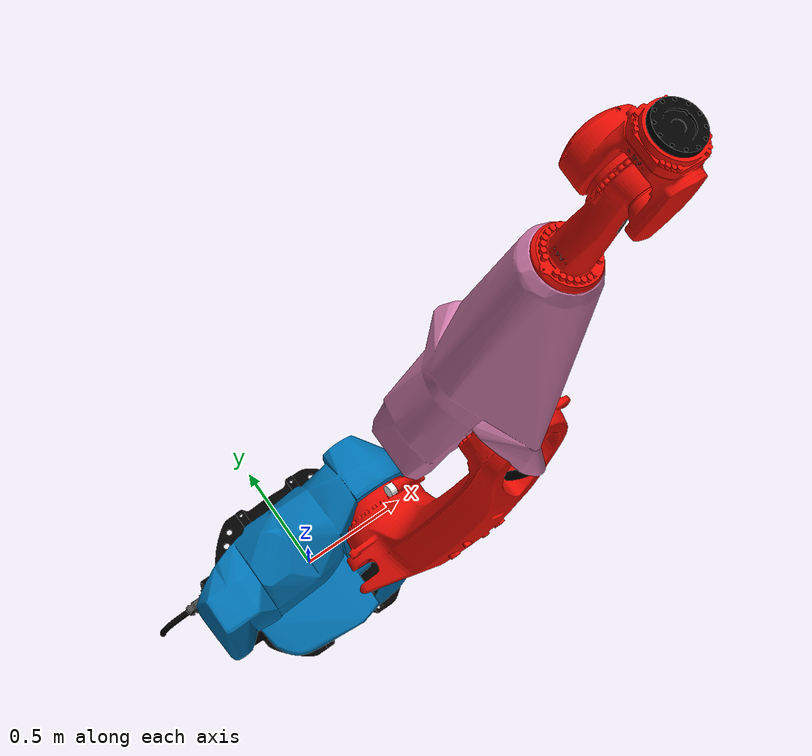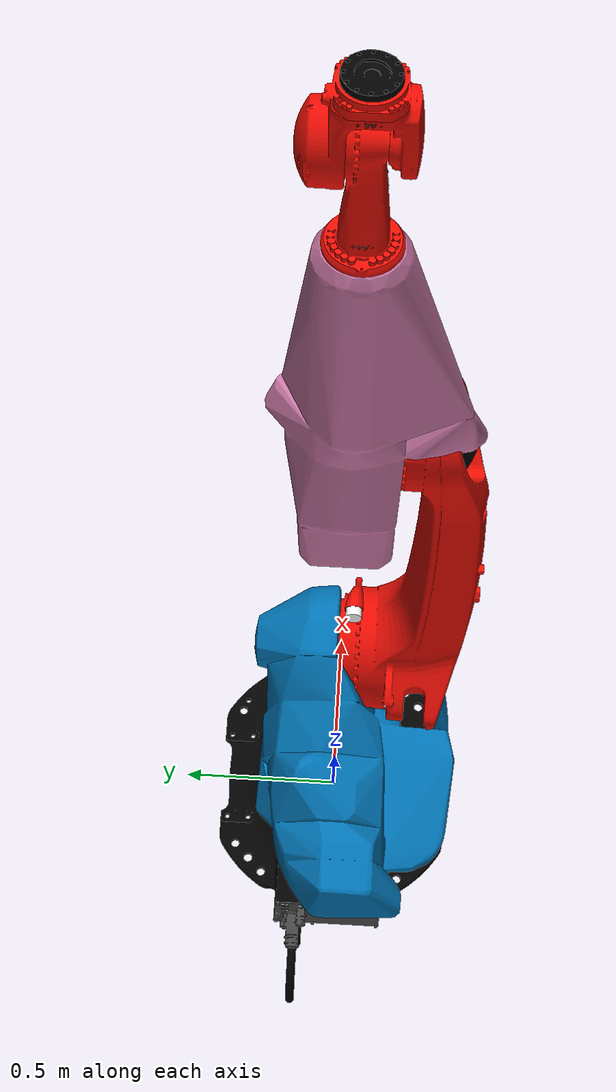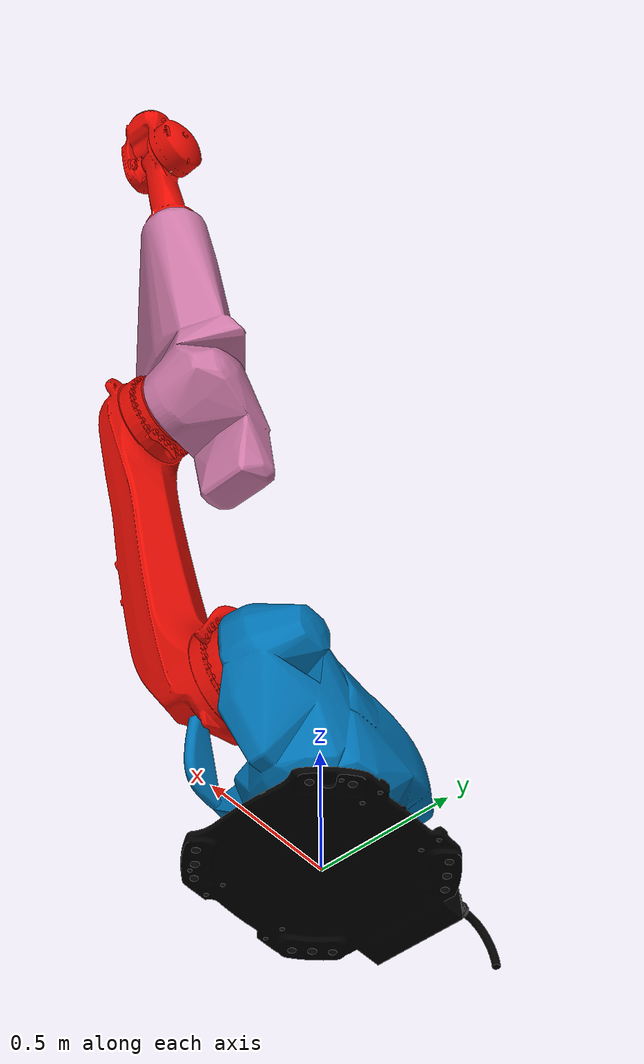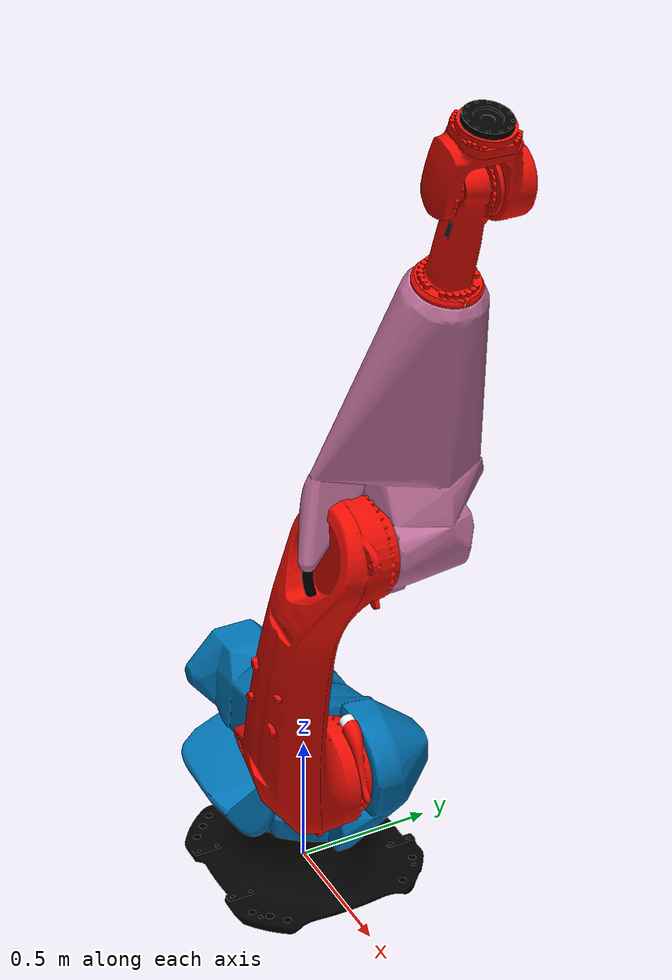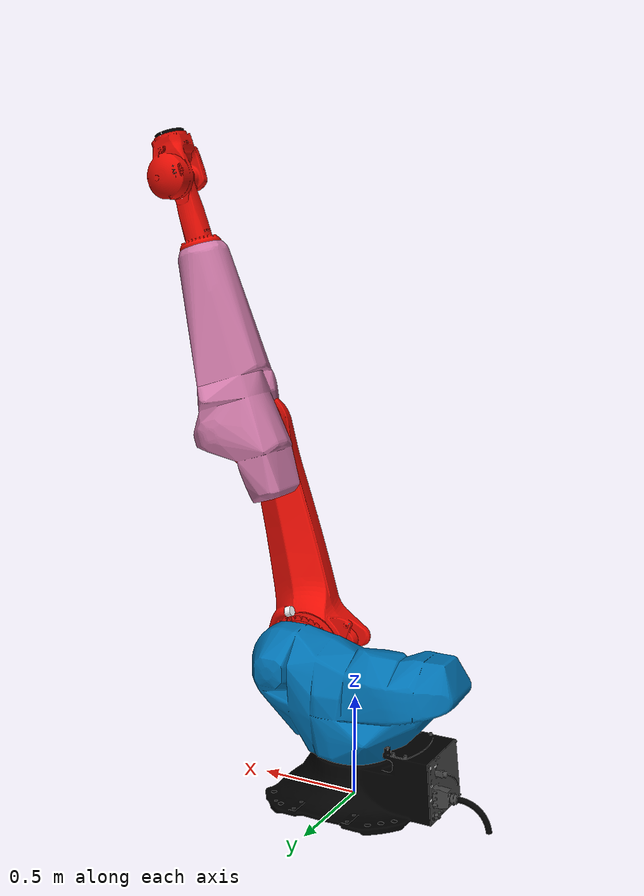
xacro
<?xml version="1.0" encoding="UTF-8"?>
<robot xmlns:xacro="http://www.ros.org/wiki/xacro" name="kr120_r2700_2">
  <!-- Import urdf files  -->
  <xacro:include filename="$(find kuka_quantec_support)/urdf/kr120_r2700_2_macro.xacro"/>
  <xacro:include filename="$(find kuka_quantec_support)/urdf/kr_quantec_ros2_control_macro.xacro"/>
  <!-- Basic arguments  -->
  <xacro:arg name="prefix" default=""/>
  <xacro:arg name="x" default="0"/>
  <xacro:arg name="y" default="0"/>
  <xacro:arg name="z" default="0"/>
  <xacro:arg name="roll" default="0"/>
  <xacro:arg name="pitch" default="0"/>
  <xacro:arg name="yaw" default="0"/>
  <!-- kroshu-specific arguments -->
  <xacro:arg name="driver_version" default="rsi_only"/>
  <xacro:arg name="mode" default="hardware"/>
  <xacro:arg name="gpio_config" default=""/>
  <xacro:arg name="roundtrip_time" default="0"/>
  <xacro:arg name="client_ip" default="0.0.0.0"/>
  <xacro:arg name="client_port" default="59152"/>
  <xacro:arg name="mxa_client_port" default="1337"/>
  <xacro:arg name="controller_ip" default="0.0.0.0"/>
  <xacro:arg name="verify_robot_model" default="true"/>
  <xacro:arg name="rsi_xml_config_file" default=""/>
  <xacro:kuka_quantec_ros2_control name="$(arg prefix)kr120_r2700_2" driver_version="$(arg driver_version)" client_ip="$(arg client_ip)" client_port="$(arg client_port)" mxa_client_port="$(arg mxa_client_port)" controller_ip="$(arg controller_ip)" prefix="$(arg prefix)" mode="$(arg mode)" gpio_config="$(arg gpio_config)" roundtrip_time="$(arg roundtrip_time)" verify_robot_model="$(arg verify_robot_model)" rsi_xml_config_file="$(arg rsi_xml_config_file)">
    <ext_axes_ros2_control_joints/>
  </xacro:kuka_quantec_ros2_control>
  <!-- world link -->
  <link name="world"/>
  <!-- robot links, joints -->
  <xacro:kuka_kr120_r2700_2_robot prefix="$(arg prefix)" package_name="kuka_quantec_support"/>
  <!-- default world - base_link joint -->
  <joint name="$(arg prefix)world-base_link" type="fixed">
    <parent link="world"/>
    <child link="$(arg prefix)base_link"/>
    <origin xyz="$(arg x) $(arg y) $(arg z)" rpy="$(arg roll) $(arg pitch) $(arg yaw)"/>
  </joint>
</robot>

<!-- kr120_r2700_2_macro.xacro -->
<robot xmlns:xacro="http://www.ros.org/wiki/xacro" name="kr120_r2700_2">
  <xacro:macro name="kuka_kr120_r2700_2_robot" params="prefix package_name">
    <link name="${prefix}base"/>
    <link name="${prefix}base_link">
      <collision>
        <geometry>
          <mesh filename="package://${package_name}/meshes/kr120_r2700_2/collision/base_link.stl"/>
        </geometry>
        <origin rpy="0.0 0.0 0.0" xyz="0.0 0.0 0.0"/>
      </collision>
      <inertial>
        <inertia ixx="12.8309" ixy="0.0" ixz="0.0" iyy="9.012" iyz="0.0" izz="14.2959"/>
        <mass value="225.96"/>
        <origin rpy="-0.0509 -0.002 1.5231" xyz="-0.0595 0.0022 0.2033"/>
      </inertial>
      <visual>
        <geometry>
          <mesh filename="package://${package_name}/meshes/kr120_r2700_2/visual/base_link.dae"/>
        </geometry>
        <origin rpy="0.0 0.0 0.0" xyz="0.0 0.0 0.0"/>
      </visual>
    </link>
    <link name="${prefix}flange"/>
    <link name="${prefix}link_1">
      <collision>
        <geometry>
          <mesh filename="package://${package_name}/meshes/kr120_r2700_2/collision/link_1.stl"/>
        </geometry>
        <origin rpy="-3.1415853071795867 0.0 -0.0" xyz="0.0 -2.24506295915028e-06 0.3055999999917534"/>
      </collision>
      <inertial>
        <inertia ixx="13.2089" ixy="0.0" ixz="0.0" iyy="31.495" iyz="0.0" izz="33.8839"/>
        <mass value="363.07"/>
        <origin rpy="1.8662 0.1026 -0.2163" xyz="0.0288 0.0119 -0.234"/>
      </inertial>
      <visual>
        <geometry>
          <mesh filename="package://${package_name}/meshes/kr120_r2700_2/visual/link_1.dae"/>
        </geometry>
        <origin rpy="-3.1415853071795867 0.0 -0.0" xyz="0.0 -2.24506295915028e-06 0.3055999999917534"/>
      </visual>
    </link>
    <link name="${prefix}link_2">
      <collision>
        <geometry>
          <mesh filename="package://${package_name}/meshes/kr120_r2700_2/collision/link_2.stl"/>
        </geometry>
        <origin rpy="1.5708 4.70197740325743e-38 1.5707963267948966" xyz="-0.6450002644664161 -0.32999999999999996 0.07199987584518178"/>
      </collision>
      <inertial>
        <inertia ixx="57.7957" ixy="0.0" ixz="0.0" iyy="5.6327" iyz="0.0" izz="58.5598"/>
        <mass value="232.06"/>
        <origin rpy="-2.8204 -1.2181 1.2776" xyz="0.4869 -0.0019 -0.1176"/>
      </inertial>
      <visual>
        <geometry>
          <mesh filename="package://${package_name}/meshes/kr120_r2700_2/visual/link_2.dae"/>
        </geometry>
        <origin rpy="1.5708 4.70197740325743e-38 1.5707963267948966" xyz="-0.6450002644664161 -0.32999999999999996 0.07199987584518178"/>
      </visual>
    </link>
    <link name="${prefix}link_3">
      <collision>
        <geometry>
          <mesh filename="package://${package_name}/meshes/kr120_r2700_2/collision/link_3.stl"/>
        </geometry>
        <origin rpy="1.5708 -0.0 -0.0" xyz="-0.33000000000000007 1.7950002644664158 0.17499987584518176"/>
      </collision>
      <inertial>
        <inertia ixx="3.2005" ixy="0.0" ixz="0.0" iyy="19.6937" iyz="0.0" izz="20.6595"/>
        <mass value="181.83"/>
        <origin rpy="2.1967 -0.0832 -0.0705" xyz="0.1908 -0.0745 0.1325"/>
      </inertial>
      <visual>
        <geometry>
          <mesh filename="package://${package_name}/meshes/kr120_r2700_2/visual/link_3.dae"/>
        </geometry>
        <origin rpy="1.5708 -0.0 -0.0" xyz="-0.33000000000000007 1.7950002644664158 0.17499987584518176"/>
      </visual>
    </link>
    <link name="${prefix}link_4">
      <collision>
        <geometry>
          <mesh filename="package://${package_name}/meshes/kr120_r2700_2/collision/link_4.stl"/>
        </geometry>
        <origin rpy="-2.3561908169838683 1.570791132121014 -2.356194490195718" xyz="-1.9099960108820213 4.129442461990345e-06 1.1580070158075508"/>
      </collision>
      <inertial>
        <inertia ixx="0.1613" ixy="0.0" ixz="0.0" iyy="1.3645" iyz="0.0" izz="1.3916"/>
        <mass value="42.4118"/>
        <origin rpy="1.5712 -1.4368 -1.5712" xyz="-0.0 0.0192 -0.1979"/>
      </inertial>
      <visual>
        <geometry>
          <mesh filename="package://${package_name}/meshes/kr120_r2700_2/visual/link_4.dae"/>
        </geometry>
        <origin rpy="-2.3561908169838683 1.570791132121014 -2.356194490195718" xyz="-1.9099960108820213 4.129442461990345e-06 1.1580070158075508"/>
      </visual>
    </link>
    <link name="${prefix}link_5">
      <collision>
        <geometry>
          <mesh filename="package://${package_name}/meshes/kr120_r2700_2/collision/link_5.stl"/>
        </geometry>
        <origin rpy="1.5708036732051034 -1.3492460511333464e-11 3.673218595765785e-06" xyz="-1.5500066632103429 1.9099963634816575 -0.09599454824282903"/>
      </collision>
      <inertial>
        <inertia ixx="0.2001" ixy="0.0" ixz="0.0" iyy="0.1206" iyz="0.0" izz="0.221"/>
        <mass value="16.9917"/>
        <origin rpy="1.5705 -0.8763 -0.0023" xyz="0.0622 0.0003 -0.0658"/>
      </inertial>
      <visual>
        <geometry>
          <mesh filename="package://${package_name}/meshes/kr120_r2700_2/visual/link_5.dae"/>
        </geometry>
        <origin rpy="1.5708036732051034 -1.3492460511333464e-11 3.673218595765785e-06" xyz="-1.5500066632103429 1.9099963634816575 -0.09599454824282903"/>
      </visual>
    </link>
    <link name="${prefix}link_6">
      <collision>
        <geometry>
          <mesh filename="package://${package_name}/meshes/kr120_r2700_2/collision/link_6.stl"/>
        </geometry>
        <origin rpy="-2.6779399020961754 1.5707881132943111 -2.6779472485198745" xyz="-1.909990058387737 1.175686397665934e-05 1.7165136789755477"/>
      </collision>
      <inertial>
        <inertia ixx="0.0115" ixy="0.0" ixz="0.0" iyy="0.0115" iyz="0.0" izz="0.0145"/>
        <mass value="6.6"/>
        <origin rpy="0.0 0.0 0.0" xyz="0.0 0.0 -0.0065"/>
      </inertial>
      <visual>
        <geometry>
          <mesh filename="package://${package_name}/meshes/kr120_r2700_2/visual/link_6.dae"/>
        </geometry>
        <origin rpy="-2.6779399020961754 1.5707881132943111 -2.6779472485198745" xyz="-1.909990058387737 1.175686397665934e-05 1.7165136789755477"/>
      </visual>
    </link>
    <link name="${prefix}tool0"/>
    <joint name="${prefix}base_link-base" type="fixed">
      <child link="${prefix}base"/>
      <origin rpy="0.0 0.0 0.0" xyz="0.0 0.0 0.0"/>
      <parent link="${prefix}base_link"/>
    </joint>
    <joint name="${prefix}joint_1" type="revolute">
      <axis xyz="0.0 0.0 1.0"/>
      <child link="${prefix}link_1"/>
      <limit effort="7290.0" lower="-3.2289" upper="3.2289" velocity="2.0385"/>
      <origin rpy="-3.1416 0.0 0.0" xyz="0.0 0.0 0.3056"/>
      <parent link="${prefix}base_link"/>
    </joint>
    <joint name="${prefix}joint_2" type="revolute">
      <axis xyz="0.0 0.0 1.0"/>
      <child link="${prefix}link_2"/>
      <limit effort="8910.0" lower="-2.4435" upper="-0.0873" velocity="1.9452"/>
      <origin rpy="1.5708 0.0 0.0" xyz="0.33 0.072 -0.3394"/>
      <parent link="${prefix}link_1"/>
    </joint>
    <joint name="${prefix}joint_3" type="revolute">
      <axis xyz="0.0 0.0 1.0"/>
      <child link="${prefix}link_3"/>
      <limit effort="7759.4539" lower="-2.0944" upper="2.9322" velocity="2.0833"/>
      <origin rpy="0.0 0.0 0.0" xyz="1.15 0.0 -0.103"/>
      <parent link="${prefix}link_2"/>
    </joint>
    <joint name="${prefix}joint_4" type="revolute">
      <axis xyz="0.0 0.0 1.0"/>
      <child link="${prefix}link_4"/>
      <limit effort="2462.3921" lower="-6.1087" upper="6.1087" velocity="3.3161"/>
      <origin rpy="1.5708 0.0 -1.5708" xyz="0.828 -0.115 0.175"/>
      <parent link="${prefix}link_3"/>
    </joint>
    <joint name="${prefix}joint_5" type="revolute">
      <axis xyz="0.0 0.0 1.0"/>
      <child link="${prefix}link_5"/>
      <limit effort="1491.6988" lower="-2.1817" upper="2.1817" velocity="3.1416"/>
      <origin rpy="0.0 1.5708 1.5708" xyz="0.0 0.096 -0.392"/>
      <parent link="${prefix}link_4"/>
    </joint>
    <joint name="${prefix}joint_6" type="revolute">
      <axis xyz="0.0 0.0 1.0"/>
      <child link="${prefix}link_6"/>
      <limit effort="908.4312" lower="-6.1087" upper="6.1087" velocity="4.5379"/>
      <origin rpy="1.5708 0.0 -1.5708" xyz="0.1665 0.0 -0.096"/>
      <parent link="${prefix}link_5"/>
    </joint>
    <joint name="${prefix}link_6-flange" type="fixed">
      <child link="${prefix}flange"/>
      <origin rpy="0.0 1.5708 0.0" xyz="0.0 0.0 -0.0485"/>
      <parent link="${prefix}link_6"/>
    </joint>
    <joint name="${prefix}link_6-tool0" type="fixed">
      <child link="${prefix}tool0"/>
      <origin rpy="3.1416 -0.0 3.1416" xyz="0.0 0.0 -0.0485"/>
      <parent link="${prefix}link_6"/>
    </joint>
  </xacro:macro>
</robot>
